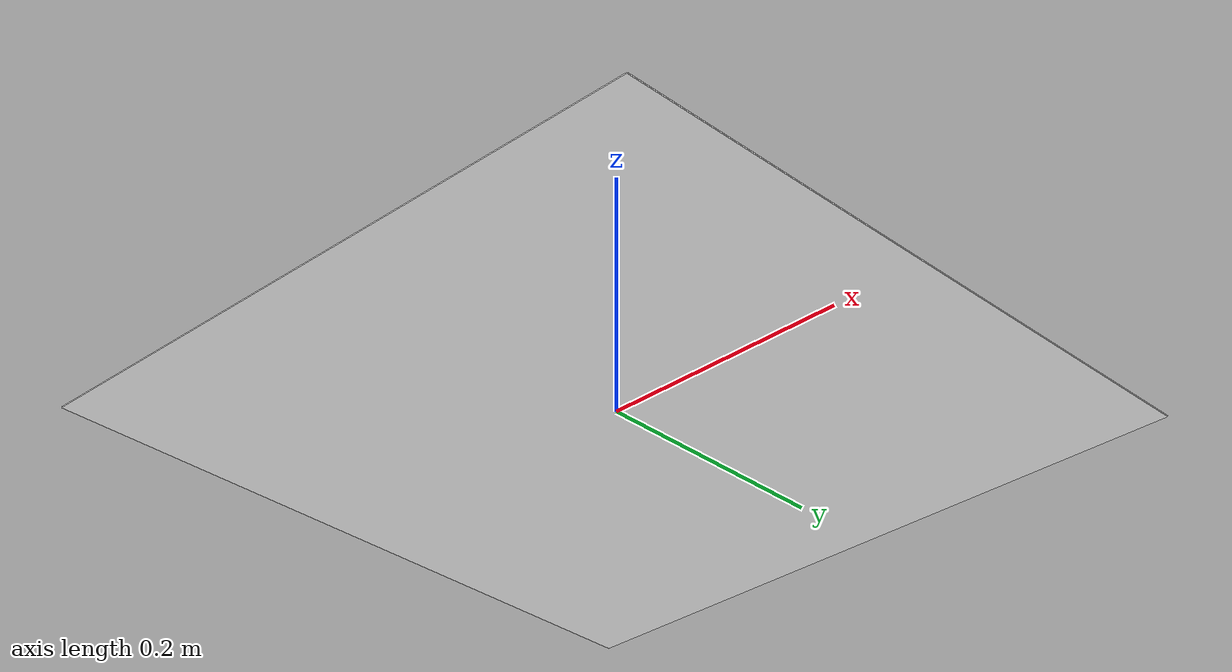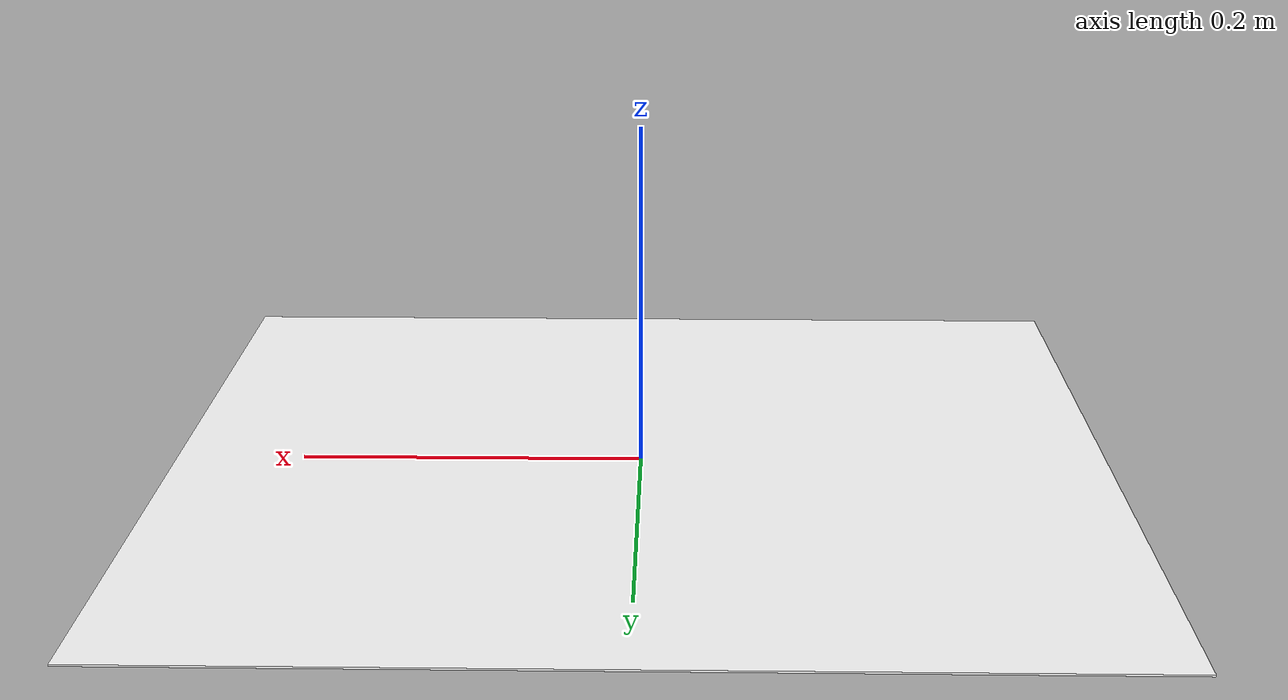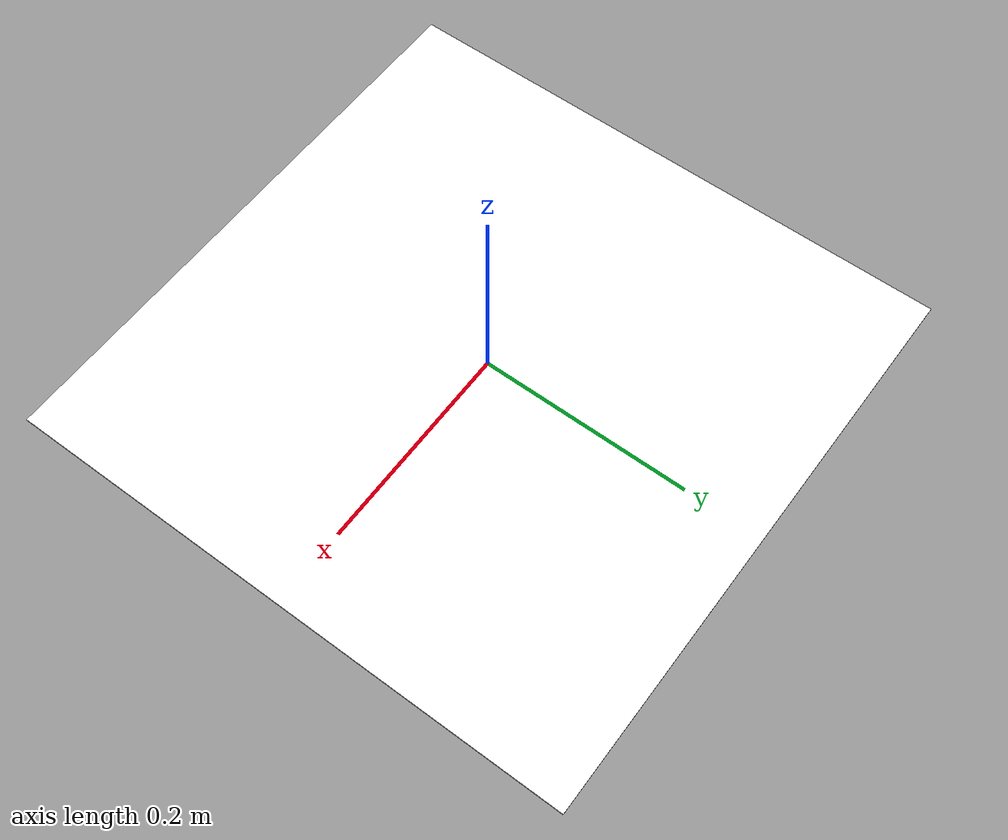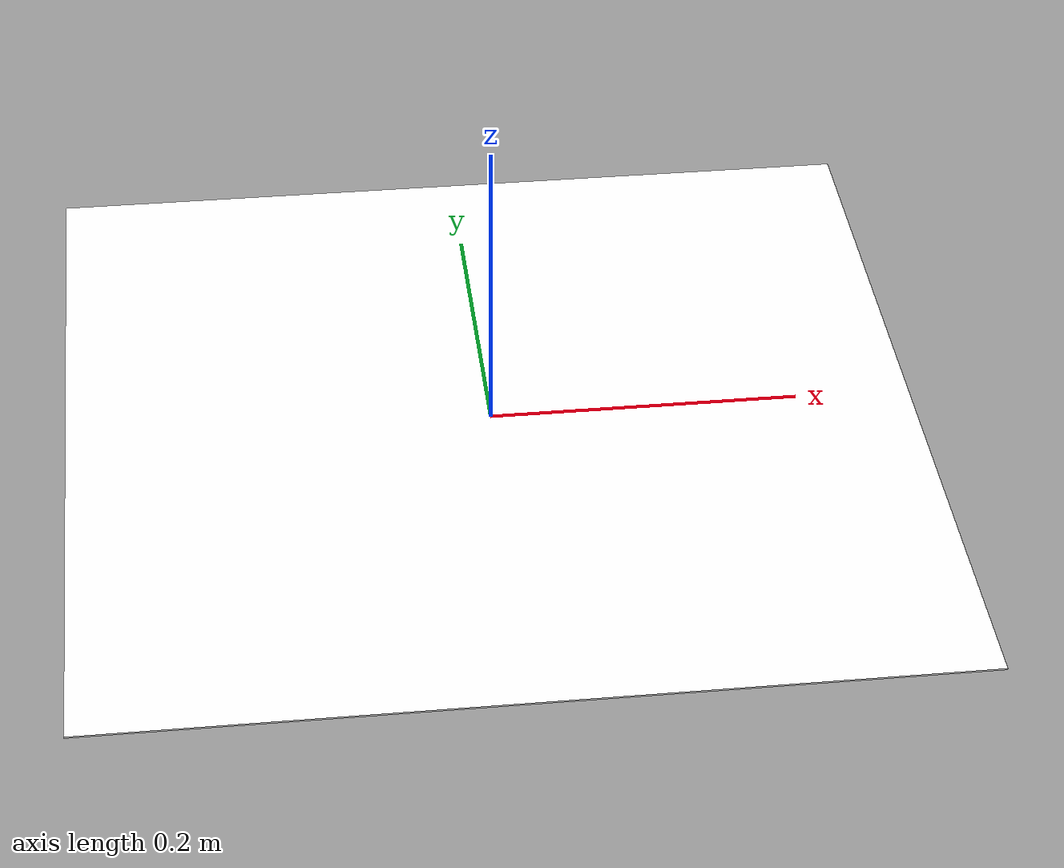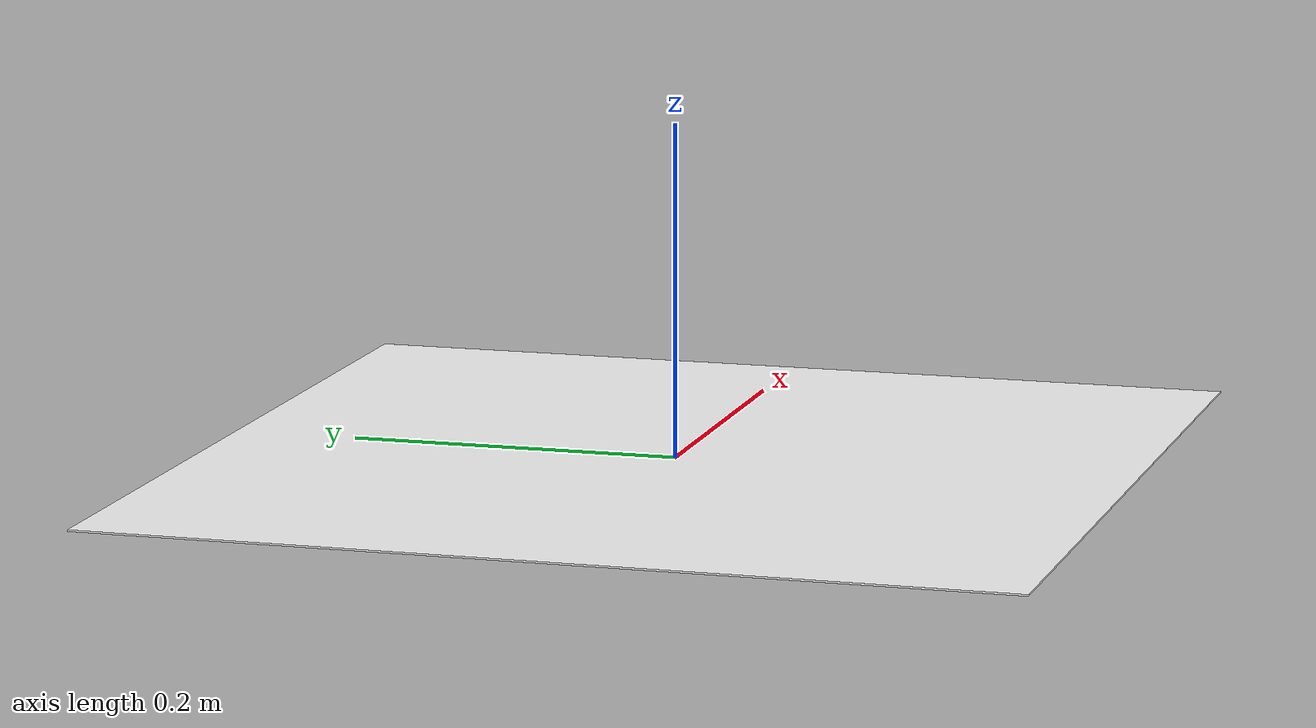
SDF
<?xml version="1.0"?>
<sdf version="1.9">
  <model name="tag36_11_00002">
    <static>true</static>
    <link name="link">
      <visual name="visual">
        <geometry>
          <box><size>0.55 0.55 0.001</size></box>
        </geometry>
        <material>
          <ambient>1 1 1 1</ambient>
          <diffuse>1 1 1 1</diffuse>
          <specular>0 0 0 1</specular>
          <pbr>
            <metal>
              <albedo_map>materials/textures/tag36h11-0.png</albedo_map>
            </metal>
          </pbr>
        </material>
      </visual>
      <collision name="collision">
        <geometry>
          <box><size>0.2 0.2 0.001</size></box>
        </geometry>
      </collision>
    </link>
  </model>
</sdf>
